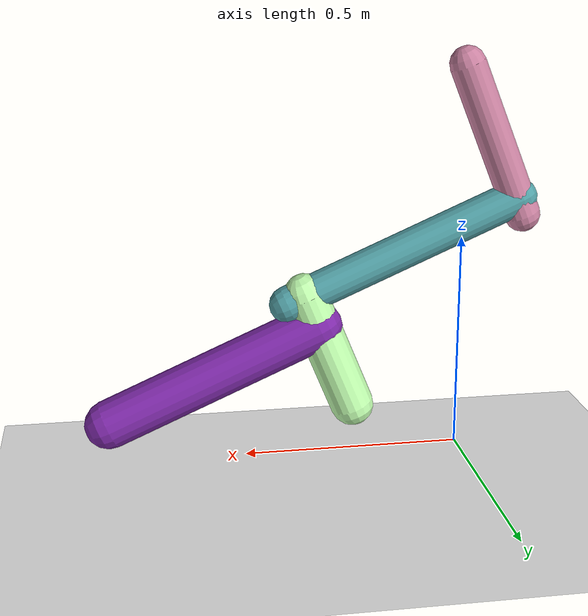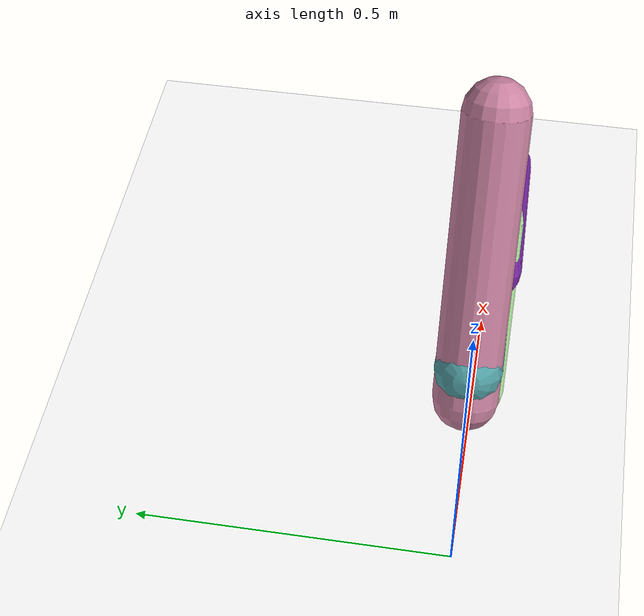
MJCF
<mujoco model="morphology">
  <option timestep="0.01"/>
  <default>
    <default class="/"/>
  </default>
  <asset>
    <texture name="texplane" type="2d" builtin="checker" rgb1="0.1 0.2 0.3" rgb2="0.2 0.3 0.4" width="300" height="300"/>
    <material name="MatPlane" class="/" texture="texplane" texrepeat="20 20" specular="1" shininess="1" reflectance="0.5"/>
  </asset>
  <worldbody>
    <light name="//unnamed_light_0" class="/" directional="true" pos="0 0 1.5" dir="0 0 -1.3" cutoff="1e+02" exponent="1" diffuse="1 1 1" specular="0.1 0.1 0.1"/>
    <geom name="ground" class="/" type="plane" size="15 15 0.5" material="MatPlane" rgba="1 1 1 1"/>
    <body name="body" pos="0 0 0.89">
      <geom name="geom0" class="/" type="capsule" contype="1" conaffinity="1" condim="3" size="0.041" rgba="0.79 0.51 0.63 1" friction="0.4 0.1 0.1" fromto="0 0 0 -0.14 0 -0.34"/>
      <body name="body1" pos="-0.13 0 -0.3">
        <geom name="geom1" class="/" type="capsule" contype="1" conaffinity="1" condim="3" size="0.042" rgba="0.32 0.63 0.65 1" friction="0.4 0.1 0.1" fromto="0 0 0 0.53 0 -0.23"/>
        <body name="body2" pos="0.49 0 -0.21">
          <geom name="geom2" class="/" type="capsule" contype="1" conaffinity="1" condim="3" size="0.05" rgba="0.75 0.99 0.68 1" friction="0.4 0.1 0.1" fromto="0 0 0 -0.11 0 -0.27"/>
          <body name="body3" pos="-0.03 0 -0.075">
            <geom name="geom3" class="/" type="capsule" contype="1" conaffinity="1" condim="3" size="0.056" rgba="0.49 0.16 0.66 1" friction="0.4 0.1 0.1" fromto="0 0 0 0.48 0 -0.21"/>
            <joint name="joint3" class="/" type="hinge" axis="0 1 0" limited="true" stiffness="20" range="-62 62" armature="0.1" damping="2"/>
          </body>
          <joint name="joint2" class="/" type="hinge" axis="0 1 0" limited="true" stiffness="20" range="-34 34" armature="0.1" damping="2"/>
        </body>
        <joint name="joint1" class="/" type="hinge" axis="0 1 0" limited="true" stiffness="20" range="-57 57" armature="0.1" damping="2"/>
      </body>
      <joint name="rootx" class="/" type="slide" axis="1 0 0" limited="false" stiffness="0" armature="0" damping="0"/>
      <joint name="rootz" class="/" type="slide" axis="0 0 1" limited="false" stiffness="0" armature="0" damping="0"/>
      <joint name="rooty" class="/" type="hinge" axis="0 1 0" limited="false" stiffness="0" armature="0" damping="0"/>
    </body>
  </worldbody>
  <actuator>
    <motor name="motor3" class="/" ctrllimited="true" ctrlrange="-1 1" gear="1.4e+02" joint="joint3"/>
    <motor name="motor2" class="/" ctrllimited="true" ctrlrange="-1 1" gear="2e+02" joint="joint2"/>
    <motor name="motor1" class="/" ctrllimited="true" ctrlrange="-1 1" gear="1.4e+02" joint="joint1"/>
  </actuator>
  <sensor>
    <subtreelinvel name="velocity" body="body"/>
  </sensor>
</mujoco>
